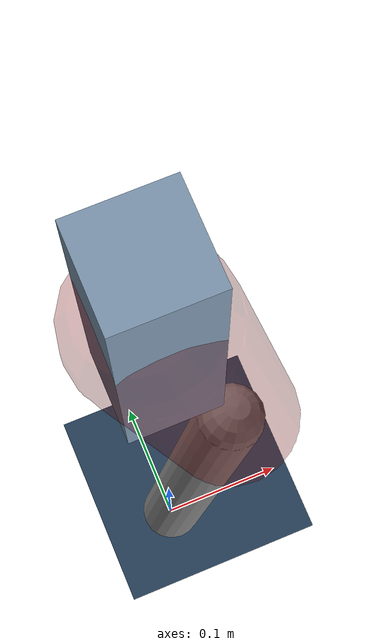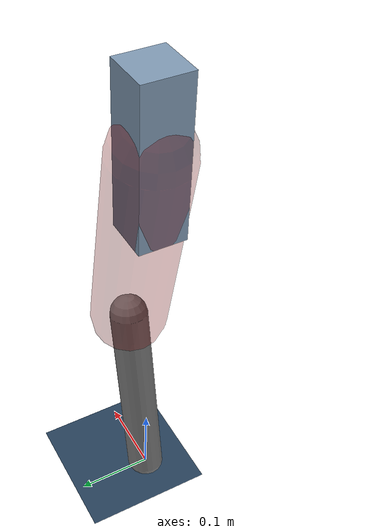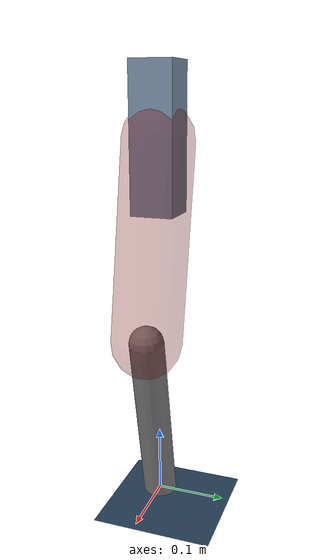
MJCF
<mujoco model="Hopper2D">
	<compiler inertiafromgeom="true" angle="radian" />
	<option timestep="0.001" integrator="implicit" cone="elliptic" solver="Newton" tolerance="1e-10" />

	<default>
		<geom contype="1" conaffinity="1" condim="3" friction="2 0.005 0.0001" solref="0.005 1" />
		<joint limited="true" damping="0.1" />
	</default>

	<asset>
		<texture name="skybox" type="skybox" builtin="gradient" rgb1=".4 .6 .8" rgb2="0 0 0" width="800" height="800" />
		<texture name="grid" type="2d" builtin="checker" rgb1=".1 .2 .3" rgb2=".2 .3 .4" width="300" height="300" mark="edge" markrgb=".2 .3 .4" />
		<material name="ground" texture="grid" texrepeat="1 1" texuniform="true" reflectance="0.1" />
		<material name="leg" rgba="0.5 0.6 0.7 1" />
	</asset>

	<worldbody>

		<geom name="floor" type="plane" size="5 5 0.25" material="ground" />

		<light directional="false" diffuse="0.8 0.8 0.8" specular="0.3 0.3 0.3" pos="0 0 2" dir="0 0 -1" />
		<light mode="targetbodycom" target="base" directional="false" diffuse="0.8 0.8 0.8" specular="0.3 0.3 0.3" pos="0 0 2" dir="0 0 -1" />

		<camera name="fixed" pos="0 -2 1" xyaxes="1 0 0 0 0 1" />
		<camera name="tracking" mode="trackcom" pos="0 -3 1" />

		<body name="root" pos="0 0 0.5344684772272366">
			<joint name="slide_x" type="slide" axis="1 0 0" range="-100 100" />
			<joint name="slide_z" type="slide" axis="0 0 1" range="0 10" />

			<body name="base" pos="0 0 0">
				<geom name="torso" type="box" size="0.03 0.03 0.1" mass="3.021" material="leg" />

				<body name="link1" pos="0 0 0" euler="0 1.3821567654294329 0">
					<joint type="hinge" axis="0 -1 0" pos="0 0 0" name="hinge1" limited="true" range="-3.14 3.14" stiffness="0" damping="0.1" />
					<geom name="thigh" type="capsule" fromto="0 0 0 0.27691558314759096 0 0" size="0.05" rgba="0.5 0 0 0.3" mass="0.9269720744984955" />

					<body name="link2" pos="0.27691558314759096 0 0" euler="0 0.38396408289171297 0">
						<joint type="hinge" axis="0 -1 0" pos="0 0 0" name="hinge2" limited="true" range="-3.14 3.14" stiffness="0" damping="0.1" />
						<geom name="shank" type="capsule" fromto="0 0 0 0.2675528940796456 0 0" size="0.025" mass="0.4569423152637165" />

					</body>
				</body>
			</body>
		</body>
	</worldbody>

	<actuator>
		<motor name="torque1" joint="hinge1" ctrlrange="-52.99919372239531 52.99919372239531" ctrllimited="true" gear="1" />
		<motor name="torque2" joint="hinge2" ctrlrange="-131.89449884444093 131.89449884444093" ctrllimited="true" gear="1" />
	</actuator>
</mujoco>
